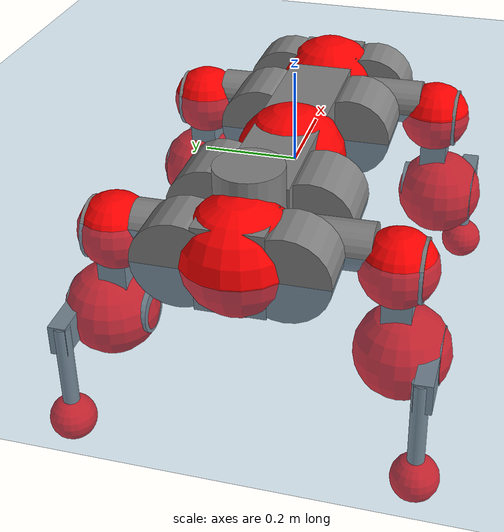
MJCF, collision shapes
<mujoco model="anymal_c">
  <compiler angle="radian" assetdir="assets" balanceinertia="true" inertiafromgeom="false"/>

  <option timestep="0.005" density="1.2" viscosity="2e-05"/>

  <size nkey="1"/>

  <visual>
    <quality shadowsize="8192"/>
    <map shadowclip="0.5"/>
  </visual>

  <default>
    <default class="/">
      <material specular="0" shininess="0.25"/>
      <geom contype="0" conaffinity="0" group="1" solref="-1000 -80"/>
      <site size="0.01 0.005 0.005" group="5"/>
      <general forcelimited="true" forcerange="-80 80" biastype="affine" gainprm="80" biasprm="0 -80 -2"/>
      <default class="anymal_c">
        <joint armature="0.01" damping="0.01" frictionloss="0.1"/>
        <default class="visual">
          <geom type="mesh" group="2"/>
          <default class="visual_zflip"/>
        </default>
        <default class="collision">
          <geom type="cylinder" group="3"/>
          <default class="foot">
            <geom size="0.03 0 0" type="sphere" condim="6" priority="1" friction="0.8 0.02 0.01" solimp="0.015 1 0.03"/>
          </default>
        </default>
      </default>
      <default class="reward_collision_sphere">
        <geom group="5" rgba="1 0 0 1"/>
      </default>
    </default>
  </default>

  <asset>
    <texture type="skybox" colorspace="auto" name="//unnamed_texture_0" builtin="gradient" rgb1="0.95 0.95 0.95" rgb2="0.95 0.95 0.95" width="100" height="600"/>
    <texture type="2d" colorspace="auto" name="texplane" builtin="checker" rgb1="0.345 0.575 0.748" rgb2="0.345 0.575 0.748" markrgb="1 1 1" width="512" height="512"/>
    <texture type="2d" colorspace="linear" name="base" file="base.png"/>
    <texture type="2d" colorspace="linear" name="top_shell" file="top_shell.png"/>
    <texture type="2d" colorspace="linear" name="bottom_shell" file="bottom_shell.png"/>
    <texture type="2d" colorspace="linear" name="remote" file="remote.png"/>
    <texture type="2d" colorspace="linear" name="hatch" file="hatch.png"/>
    <texture type="2d" colorspace="linear" name="handle" file="handle.png"/>
    <texture type="2d" colorspace="linear" name="face" file="face.png"/>
    <texture type="2d" colorspace="linear" name="battery" file="battery.png"/>
    <texture type="2d" colorspace="linear" name="lidar_cage" file="lidar_cage.png"/>
    <texture type="2d" colorspace="linear" name="depth_camera" file="depth_camera.png"/>
    <texture type="2d" colorspace="linear" name="wide_angle_camera" file="wide_angle_camera.png"/>
    <texture type="2d" colorspace="linear" name="lidar" file="lidar.png"/>
    <texture type="2d" colorspace="linear" name="drive" file="drive.png"/>
    <texture type="2d" colorspace="linear" name="hip_l" file="hip_l.png"/>
    <texture type="2d" colorspace="linear" name="shank_l" file="shank_l.png"/>
    <texture type="2d" colorspace="linear" name="foot" file="foot.png"/>
    <texture type="2d" colorspace="linear" name="thigh" file="thigh.png"/>
    <texture type="2d" colorspace="linear" name="shank_r" file="shank_r.png"/>
    <texture type="2d" colorspace="linear" name="hip_r" file="hip_r.png"/>
    <material name="MatPlane" class="/" texture="texplane" texuniform="true" texrepeat="2 2" specular="0.9" shininess="0.5"/>
    <material name="black_plastic" class="/" rgba="0.007 0.007 0.007 1"/>
    <material name="green" class="/" rgba="0.052 0.178 0.033 1"/>
    <material name="red" class="/" rgba="0.178 0.006 0.005 1"/>
    <material name="yellow" class="/" rgba="0.178 0.119 0.006 1"/>
    <material name="lwl" class="/" rgba="0.8 0.8 0.8 1"/>
    <material name="base" class="/" texture="base"/>
    <material name="top_shell" class="/" texture="top_shell"/>
    <material name="bottom_shell" class="/" texture="bottom_shell"/>
    <material name="hip_l" class="/" texture="hip_l"/>
    <material name="thigh" class="/" texture="thigh"/>
    <material name="shank_l" class="/" texture="shank_l"/>
    <material name="foot" class="/" texture="foot"/>
    <material name="hip_r" class="/" texture="hip_r"/>
    <material name="shank" class="/" texture="shank_r"/>
    <material name="hatch" class="/" texture="hatch"/>
    <material name="remote" class="/" texture="remote"/>
    <material name="handle" class="/" texture="handle"/>
    <material name="face" class="/" texture="face"/>
    <material name="depth_camera" class="/" texture="depth_camera"/>
    <material name="wide_angle_camera" class="/" texture="wide_angle_camera"/>
    <material name="battery" class="/" texture="battery"/>
    <material name="lidar_cage" class="/" texture="lidar_cage"/>
    <material name="lidar" class="/" texture="lidar"/>
    <material name="drive" class="/" texture="drive"/>
    <mesh name="base_0" class="/" file="base_0.obj"/>
    <mesh name="base_1" class="/" file="base_1.obj"/>
    <mesh name="base_2" class="/" file="base_2.obj"/>
    <mesh name="base_3" class="/" file="base_3.obj"/>
    <mesh name="base_4" class="/" file="base_4.obj"/>
    <mesh name="base_5" class="/" file="base_5.obj"/>
    <mesh name="top_shell" class="/" file="top_shell.obj"/>
    <mesh name="bottom_shell" class="/" file="bottom_shell.obj"/>
    <mesh name="remote" class="/" file="remote.obj"/>
    <mesh name="handle" class="/" file="handle.obj"/>
    <mesh name="face" class="/" file="face.obj"/>
    <mesh name="wide_angle_camera" class="/" file="wide_angle_camera.obj"/>
    <mesh name="depth_camera" class="/" file="depth_camera.obj"/>
    <mesh name="battery" class="/" file="battery.obj"/>
    <mesh name="lidar_cage" class="/" file="lidar_cage.obj"/>
    <mesh name="lidar" class="/" file="lidar.obj"/>
    <mesh name="drive" class="/" file="drive.obj"/>
    <mesh name="hip_l" class="/" file="hip_l.obj"/>
    <mesh name="thigh" class="/" file="thigh.obj"/>
    <mesh name="shank_l" class="/" file="shank_l.obj"/>
    <mesh name="foot" class="/" file="foot.obj"/>
    <mesh name="hip_r" class="/" file="hip_r.obj"/>
    <mesh name="hatch" class="/" file="hatch.obj"/>
    <mesh name="shank_r" class="/" file="shank_r.obj"/>
  </asset>

  <worldbody>
    <geom name="floor" class="/" size="100 100 0.125" type="plane" group="0" material="MatPlane"/>
    <light name="toplight_shadow" class="/" pos="0 0 5" dir="0.0990148 0.0990148 -0.990148" type="directional" ambient="0.04 0.04 0.04" diffuse="0.55 0.55 0.55" specular="0.12 0.12 0.12"/>
    <light name="toplight_fill" class="/" pos="0 0 5" dir="0.0990148 0.0990148 -0.990148" type="directional" castshadow="false" ambient="0.04 0.04 0.04" diffuse="0.3 0.3 0.3" specular="0.08 0.08 0.08"/>
    <body name="trunk" childclass="anymal_c" pos="-0.00138108 0.00767565 0.00322703" quat="0.999993 -0.00174372 -0.00168966 0.00301146">
      <inertial pos="0.00847442 0.0126023 0.024006" quat="0.47439 0.514813 0.499357 0.510454" mass="20.0731" diaginertia="0.433877 4.90408 0.028011"/>
      <joint name="//unnamed_joint_0" type="free" armature="0" damping="0" frictionloss="0"/>
      <geom name="//unnamed_geom_1" class="visual" material="green" mesh="base_0"/>
      <geom name="//unnamed_geom_2" class="visual" material="yellow" mesh="base_1"/>
      <geom name="//unnamed_geom_3" class="visual" material="red" mesh="base_2"/>
      <geom name="//unnamed_geom_4" class="visual" material="black_plastic" mesh="base_3"/>
      <geom name="//unnamed_geom_5" class="visual" material="lwl" mesh="base_4"/>
      <geom name="//unnamed_geom_6" class="visual" material="base" mesh="base_5"/>
      <geom name="trunk_1" class="collision" size="0.29188 0.0704539 0.0905836" type="box"/>
      <geom name="trunk_2" class="collision" size="0.0905836 0.0729701" pos="0.189946 0.103902 0" quat="0.707107 0 0.707107 0"/>
      <geom name="trunk_3" class="collision" size="0.0905836 0.0729701" pos="-0.189946 0.103902 0" quat="0.707107 0 0.707107 0"/>
      <geom name="trunk_4" class="collision" size="0.0905836 0.0729701" pos="0.189946 -0.103902 0" quat="0.707107 0 0.707107 0"/>
      <geom name="trunk_5" class="collision" size="0.0905836 0.0729701" pos="-0.189946 -0.103902 0" quat="0.707107 0 0.707107 0"/>
      <geom name="//unnamed_geom_12" class="visual" material="top_shell" mesh="top_shell"/>
      <geom name="//unnamed_geom_13" class="visual" material="bottom_shell" mesh="bottom_shell"/>
      <geom name="//unnamed_geom_14" class="visual" material="remote" mesh="remote"/>
      <geom name="//unnamed_geom_15" class="visual" material="handle" mesh="handle"/>
      <geom name="//unnamed_geom_16" class="visual" pos="0.361988 0 0" quat="1 0 0 0" material="face" mesh="face"/>
      <geom name="trunk_6" class="collision" size="0.0553566 0.0704539 0.0905836" pos="0.41002 0 0" type="box"/>
      <geom name="//unnamed_geom_18" class="collision" size="0.0905836 0.0553566" pos="0.41002 0.103902 0" quat="0.707107 0 0.707107 0"/>
      <geom name="//unnamed_geom_19" class="collision" size="0.0905836 0.0553566" pos="0.41002 -0.103902 0" quat="0.707107 0 0.707107 0"/>
      <geom name="//unnamed_geom_20" class="visual" pos="0.403156 0 -0.0177182" quat="0.965926 0 0.258819 0" material="depth_camera" mesh="depth_camera"/>
      <geom name="//unnamed_geom_21" class="visual" pos="0.448009 0 0.00990762" material="wide_angle_camera" mesh="wide_angle_camera"/>
      <geom name="//unnamed_geom_22" class="visual_zflip" pos="-0.361988 0 0" quat="0 0 0 1" material="face" mesh="face"/>
      <geom name="trunk_7" class="collision" size="0.0553566 0.0704539 0.0905836" pos="-0.41002 0 0" quat="0 0 0 1" type="box"/>
      <geom name="//unnamed_geom_24" class="collision" size="0.0905836 0.0553566" pos="-0.41002 -0.103902 0" quat="0 -0.707107 0 0.707107"/>
      <geom name="//unnamed_geom_25" class="collision" size="0.0905836 0.0553566" pos="-0.41002 0.103902 0" quat="0 -0.707107 0 0.707107"/>
      <geom name="//unnamed_geom_26" class="visual" pos="-0.403156 0 -0.0177182" quat="0 -0.258819 0 0.965926" material="depth_camera" mesh="depth_camera"/>
      <geom name="//unnamed_geom_27" class="visual_zflip" pos="-0.448009 0 0.00990762" quat="0 0 0 1" material="wide_angle_camera" mesh="wide_angle_camera"/>
      <geom name="//unnamed_geom_28" class="visual" material="battery" mesh="battery"/>
      <geom name="//unnamed_geom_29" class="visual" pos="0 0.121499 0.0208335" quat="0.683013 -0.183013 0.183013 0.683013" material="depth_camera" mesh="depth_camera"/>
      <geom name="//unnamed_geom_30" class="visual" pos="0 -0.121499 0.0208335" quat="0.683013 0.183013 0.183013 -0.683013" material="depth_camera" mesh="depth_camera"/>
      <geom name="//unnamed_geom_31" class="visual" pos="-0.317886 0 0.0486446" quat="1 0 0 0" material="lidar_cage" mesh="lidar_cage"/>
      <geom name="trunk_8" class="collision" size="0.0704539 0.0603891" pos="-0.317886 0 0.0883545"/>
      <geom name="//unnamed_geom_33" class="visual" pos="-0.317886 0.000240044 0.0941124" quat="0.707107 0 0 -0.707107" material="lidar" mesh="lidar"/>
      <geom name="//unnamed_geom_34" class="visual" pos="0.261906 0.154076 1.41878e-08" quat="0.258819 0.965926 0 0" material="drive" mesh="drive"/>
      <geom name="//unnamed_geom_35" class="visual" pos="0.261906 -0.154076 -1.41878e-08" quat="0.258819 -0.965926 0 0" material="drive" mesh="drive"/>
      <geom name="//unnamed_geom_36" class="visual" pos="-0.261906 0.154076 -1.41878e-08" quat="0 0 0.965926 -0.258819" material="drive" mesh="drive"/>
      <geom name="//unnamed_geom_37" class="visual" pos="-0.261906 -0.154076 1.41878e-08" quat="0 0 -0.965926 -0.258819" material="drive" mesh="drive"/>
      <geom name="//unnamed_geom_38" class="visual" pos="0.101304 0 0.0483137" quat="1 0 0 0" material="hatch" mesh="hatch"/>
      <geom name="//unnamed_geom_39" class="reward_collision_sphere" size="0.120778"/>
      <geom name="//unnamed_geom_40" class="reward_collision_sphere" size="0.120778" pos="0.392991 0 0"/>
      <geom name="//unnamed_geom_41" class="reward_collision_sphere" size="0.120778" pos="-0.392991 0 0"/>
      <site name="imu" pos="0.217613 0.0156724 0.0339832" size="0.0100648"/>
      <camera name="track" pos="0 -2.96862 0" quat="0.707107 0.707107 0 0" mode="trackcom"/>
      <camera name="ego_camera" pos="0.392991 0 -0.0264733" quat="-0.5 -0.5 0.5 0.5"/>
      <body name="LF_HIP" pos="0.262167 0.155494 -0.000818037" quat="0.259295 0.965798 0.000132128 -0.000209283">
        <inertial pos="0.0491848 -0.0128351 -0.00415525" quat="-0.14675 0.726876 -0.0717906 0.667055" mass="2.81487" diaginertia="0.00289092 0.0369051 0.000404437"/>
        <joint name="LF_HAA" pos="0 0 0" axis="0.999835 0.0176727 -0.00415432" range="-0.600506 0.512092" armature="0.0103022" damping="0.0159292" frictionloss="0.0931815"/>
        <geom name="//unnamed_geom_42" class="visual" pos="0 0.000834606 -0.000137083" quat="0.258819 -0.965926 0 0" material="hip_l" mesh="hip_l"/>
        <geom name="//unnamed_geom_43" class="visual" pos="0.0523114 -0.0711389 -0.0349886" quat="0.183013 -0.683013 0.683013 0.183013" material="drive" mesh="drive"/>
        <geom name="//unnamed_geom_44" class="collision" size="0.0503242 0.0704539" pos="0.0523114 -0.017752 -0.00456995" quat="-0.353553 -0.612372 0.612372 -0.353553"/>
        <body name="LF_THIGH" pos="0.0426346 -0.113756 -0.0304419" quat="0.183067 -0.678553 0.687674 0.182088">
          <inertial pos="0.0257277 -0.0130037 -0.161396" quat="0.991549 -0.000172293 -0.0760497 0.1051" mass="2.94875" diaginertia="0.0177415 0.185019 0.000541211"/>
          <joint name="LF_HFE" pos="0 0 0" axis="0.999197 -0.0221845 -0.0333665" range="-2.98241 3.37223" armature="0.00361807" damping="0.0068117" frictionloss="0.132465"/>
          <geom name="//unnamed_geom_45" class="visual" pos="-0.0121564 -1.91557e-05 0" quat="0.707107 0 0 -0.707107" material="thigh" mesh="thigh"/>
          <geom name="//unnamed_geom_46" class="collision" size="0.0654215 0.0402594" pos="0.0349325 0 0" quat="0.5 0.5 -0.5 -0.5"/>
          <geom name="//unnamed_geom_47" class="collision" size="0.0377432 0.0301945 0.14223" pos="0.0261994 0 -0.093526" quat="0.707107 0 0 -0.707107" type="box"/>
          <geom name="//unnamed_geom_48" class="visual" pos="0.0875933 0 -0.188622" quat="1 0 0 0" material="drive" mesh="drive"/>
          <geom name="//unnamed_geom_49" class="collision" size="0.0503242 0.0704539" pos="0.0264614 0 -0.188622" quat="0.707107 0 0.707107 0"/>
          <geom name="//unnamed_geom_50" class="reward_collision_sphere" size="0.0805188" pos="0.0218328 0 0"/>
          <body name="LF_SHANK" pos="0.085815 -0.00196633 -0.191418" quat="1 -0.000256087 -0.000125247 8.59473e-05">
            <inertial pos="0.0155961 -0.0837437 -0.0438938" quat="0.993688 -0.104414 -0.000272324 -0.0410004" mass="0.624004" diaginertia="0.00567073 0.0620611 0.000155035"/>
            <joint name="LF_KFE" pos="0 0 0" axis="0.999984 -0.00286486 0.00492958" range="-3.40301 2.95303" armature="0.0135036" damping="0.0598002" frictionloss="0.0831689"/>
            <geom name="//unnamed_geom_51" class="visual" pos="-0.00396394 -0.021136 0" quat="0.707107 0 0 -0.707107" material="shank_l" mesh="shank_l"/>
            <geom name="LF_kfe_act" class="collision" size="0.0603891 0.0201297" pos="0.0174663 0 0" quat="0.5 0.5 -0.5 -0.5"/>
            <geom name="//unnamed_geom_53" class="collision" size="0.0578718 0.0339688 0.0191232" pos="0.0174663 -0.0853463 0" quat="0.5 0.5 -0.5 -0.5" type="box"/>
            <geom name="//unnamed_geom_54" class="visual" pos="0.0113977 -0.137356 -0.223679" quat="0.382683 0 0 -0.92388" material="foot" mesh="foot"/>
            <geom name="LF_calf" class="collision" size="0.0176135 0.142168" pos="0.0113967 -0.130545 -0.11184" quat="0.707107 0 0 -0.707107"/>
            <geom name="LF_foot" class="foot" size="0.0352305" pos="0.0113967 -0.130545 -0.208788" quat="0.707107 0 0 -0.707107"/>
            <geom name="//unnamed_geom_57" class="reward_collision_sphere" size="0.100648" pos="-0.0436656 0 0"/>
            <geom name="//unnamed_geom_58" class="reward_collision_sphere" size="0.0503242" pos="0.0113967 -0.130545 -0.208788"/>
            <site name="LF_foot" class="foot" pos="0.0113967 -0.130545 -0.208788" quat="0.707107 0 0 -0.707107" size="0.0100648"/>
          </body>
        </body>
      </body>
      <body name="RF_HIP" pos="0.274841 -0.149195 0.0118459" quat="0.258224 -0.966085 0.000285284 -0.000652451">
        <inertial pos="0.0503186 0.0184282 -0.000615574" quat="0.0801409 0.682871 0.123598 0.715534" mass="3.03099" diaginertia="0.00333417 0.0354429 0.000404712"/>
        <joint name="RF_HAA" pos="0 0 0" axis="0.999499 -0.0302895 -0.00914447" stiffness="0.0666022" range="-0.491375 0.513762" armature="0.0123059" damping="0.0218049" frictionloss="0.0862907"/>
        <geom name="//unnamed_geom_59" class="visual" pos="0 -0.000834599 -0.000137083" quat="0.258819 0.965926 0 0" material="hip_r" mesh="hip_r"/>
        <geom name="//unnamed_geom_60" class="visual" pos="0.0523115 0.0711389 -0.0349886" quat="0.183013 0.683013 0.683013 -0.183013" material="drive" mesh="drive"/>
        <geom name="//unnamed_geom_61" class="collision" size="0.0503242 0.0704539" pos="0.0523114 0.017752 -0.00456995" quat="-0.353553 0.612372 0.612372 0.353553"/>
        <body name="RF_THIGH" pos="0.0568281 0.105633 -0.0170267" quat="0.183215 0.683034 0.682905 -0.183133">
          <inertial pos="0.0212694 0.00740049 -0.174147" quat="0.994116 -0.0186341 -0.0695126 0.0809584" mass="2.97761" diaginertia="0.0166329 0.213111 0.000526009"/>
          <joint name="RF_HFE" pos="0 0 0" axis="1 0.000469184 1.48302e-05" range="-3.16317 3.06508" armature="0.0150668" damping="0" frictionloss="0.136248"/>
          <geom name="//unnamed_geom_62" class="visual" pos="-0.0121564 -1.91557e-05 0" quat="0.707107 0 0 -0.707107" material="thigh" mesh="thigh"/>
          <geom name="//unnamed_geom_63" class="collision" size="0.0654215 0.0402594" pos="0.0349325 0 0" quat="0.5 0.5 0.5 0.5"/>
          <geom name="//unnamed_geom_64" class="collision" size="0.0377432 0.0301945 0.14223" pos="0.0261994 0 -0.093526" quat="0.707107 0 0 0.707107" type="box"/>
          <geom name="//unnamed_geom_65" class="visual" pos="0.0875933 0 -0.188622" quat="1 0 0 0" material="drive" mesh="drive"/>
          <geom name="//unnamed_geom_66" class="collision" size="0.0503242 0.0704539" pos="0.0264614 0 -0.188622" quat="0.707107 0 0.707107 0"/>
          <geom name="//unnamed_geom_67" class="reward_collision_sphere" size="0.0805188" pos="0.0218328 0 0"/>
          <body name="RF_SHANK" pos="0.0892661 -0.00553584 -0.199536" quat="1 -0.000577536 -0.000404629 -0.000651527">
            <inertial pos="0.0118874 0.0834118 -0.0529189" quat="0.991153 0.124059 -0.0030557 0.0470819" mass="0.500426" diaginertia="0.00455748 0.0500888 0.00012936"/>
            <joint name="RF_KFE" pos="0 0 0" axis="1 0.000135249 -0.000271601" stiffness="0.000902596" range="-3.21094 3.08667" armature="0.0104618" damping="0.068972" frictionloss="0.120694"/>
            <geom name="//unnamed_geom_68" class="visual" pos="-0.00396392 0.0211359 0" quat="0.707107 0 0 0.707107" material="shank" mesh="shank_r"/>
            <geom name="RF_kfe_act" class="collision" size="0.0603891 0.0201297" pos="0.0174663 0 0" quat="0.5 0.5 0.5 0.5"/>
            <geom name="//unnamed_geom_70" class="collision" size="0.0578718 0.0339688 0.0191232" pos="0.0174663 0.0853463 0" quat="0.5 0.5 0.5 0.5" type="box"/>
            <geom name="//unnamed_geom_71" class="visual" pos="0.0113958 0.137356 -0.223679" quat="0.382683 0 0 0.92388" material="foot" mesh="foot"/>
            <geom name="RF_calf" class="collision" size="0.0176135 0.142168" pos="0.0113967 0.130545 -0.11184" quat="0.707107 0 0 0.707107"/>
            <geom name="RF_foot" class="foot" size="0.0447423" pos="0.0113967 0.130545 -0.208788" quat="0.707107 0 0 0.707107"/>
            <geom name="//unnamed_geom_74" class="reward_collision_sphere" size="0.100648" pos="-0.0436656 0 0"/>
            <geom name="//unnamed_geom_75" class="reward_collision_sphere" size="0.0503242" pos="0.0113967 0.130545 -0.208788"/>
            <site name="RF_foot" class="foot" pos="0.0113967 0.130545 -0.208788" quat="0.707107 0 0 0.707107" size="0.0100648"/>
          </body>
        </body>
      </body>
      <body name="LH_HIP" pos="-0.259592 0.148802 -0.00881132" quat="-0.000326987 -0.000432687 0.965903 -0.258905">
        <inertial pos="0.047997 0.0245417 -0.0124525" quat="0.136523 0.681451 0.117719 0.709316" mass="3.4831" diaginertia="0.00319741 0.0399608 0.000404775"/>
        <joint name="LH_HAA" pos="0 0 0" axis="0.999737 -0.0145903 0.0177061" range="-0.69329 0.79596" armature="0.0109853" damping="0.00210679" frictionloss="0.0553389"/>
        <geom name="//unnamed_geom_76" class="visual" pos="0 -0.000834599 -0.000137083" quat="-0.258819 -0.965926 0 0" material="hip_r" mesh="hip_r"/>
        <geom name="//unnamed_geom_77" class="visual" pos="0.0523115 0.0711389 -0.0349886" quat="0.183013 0.683013 0.683013 -0.183013" material="drive" mesh="drive"/>
        <geom name="//unnamed_geom_78" class="collision" size="0.0503242 0.0704539" pos="0.0523114 0.017752 -0.00456995" quat="-0.353553 0.612372 0.612372 0.353553"/>
        <body name="LH_THIGH" pos="0.0500015 0.113355 -0.0300545" quat="0.185067 0.678862 0.686119 -0.184762">
          <inertial pos="0.0280177 -0.013752 -0.166261" quat="0.99679 -0.0181688 -0.0565644 0.0536599" mass="3.59427" diaginertia="0.0164345 0.196534 0.000456168"/>
          <joint name="LH_HFE" pos="0 0 0" axis="0.997888 -0.0603017 -0.0241677" range="-3.133 3.11883" armature="0.0062077" damping="0" frictionloss="0.13264"/>
          <geom name="//unnamed_geom_79" class="visual" pos="-0.0121564 -1.91557e-05 0" quat="0.707107 0 0 -0.707107" material="thigh" mesh="thigh"/>
          <geom name="//unnamed_geom_80" class="collision" size="0.0654215 0.0402594" pos="0.0349325 0 0" quat="0.5 0.5 -0.5 -0.5"/>
          <geom name="//unnamed_geom_81" class="collision" size="0.0377432 0.0301945 0.14223" pos="0.0261994 0 -0.093526" quat="0.707107 0 0 -0.707107" type="box"/>
          <geom name="//unnamed_geom_82" class="visual" pos="0.0875933 0 -0.188622" quat="1 0 0 0" material="drive" mesh="drive"/>
          <geom name="//unnamed_geom_83" class="collision" size="0.0503242 0.0704539" pos="0.0264614 0 -0.188622" quat="0.707107 0 0.707107 0"/>
          <geom name="//unnamed_geom_84" class="reward_collision_sphere" size="0.0805188" pos="0.0218328 0 0"/>
          <body name="LH_SHANK" pos="0.0925052 -1.30256e-05 -0.19689" quat="0.999995 -0.0018894 -0.00177165 0.00160155">
            <inertial pos="0.00604538 0.0810744 -0.0536542" quat="0.992732 0.117629 0.000821773 0.0254218" mass="0.615119" diaginertia="0.00562016 0.0726516 0.000156192"/>
            <joint name="LH_KFE" pos="0 0 0" axis="0.999907 0.0135244 -0.00186693" range="-3.39399 3.16473" armature="0.00345734" damping="0" frictionloss="0.1376"/>
            <geom name="//unnamed_geom_85" class="visual" pos="-0.00396392 0.0211359 0" quat="-0.707107 0 0 -0.707107" material="shank" mesh="shank_r"/>
            <geom name="LH_kfe_act" class="collision" size="0.0603891 0.0201297" pos="0.0174663 0 0" quat="0.5 0.5 -0.5 -0.5"/>
            <geom name="//unnamed_geom_87" class="collision" size="0.0578718 0.0339688 0.0191232" pos="0.0174663 0.0853463 0" quat="0.5 0.5 -0.5 -0.5" type="box"/>
            <geom name="//unnamed_geom_88" class="visual" pos="0.0113958 0.137356 -0.223679" quat="-0.382683 0 0 -0.92388" material="foot" mesh="foot"/>
            <geom name="LH_calf" class="collision" size="0.0176135 0.142168" pos="0.0113967 0.130545 -0.11184" quat="0.707107 0 0 -0.707107"/>
            <geom name="LH_foot" class="foot" size="0.0338517" pos="0.0113967 0.130545 -0.208788" quat="0.707107 0 0 -0.707107"/>
            <geom name="//unnamed_geom_91" class="reward_collision_sphere" size="0.100648" pos="-0.0436656 0 0"/>
            <geom name="//unnamed_geom_92" class="reward_collision_sphere" size="0.0503242" pos="0.0113967 0.130545 -0.208788"/>
            <site name="LH_foot" class="foot" pos="0.0113967 0.130545 -0.208788" quat="0.707107 0 0 -0.707107" size="0.0100648"/>
          </body>
        </body>
      </body>
      <body name="RH_HIP" pos="-0.249248 -0.155124 -0.00284717" quat="0.00399089 -0.00202235 -0.967226 -0.253878">
        <inertial pos="0.0500919 -0.019531 -0.00505722" quat="-0.131135 0.710061 -0.14142 0.677214" mass="3.01073" diaginertia="0.00318186 0.0364201 0.000370384"/>
        <joint name="RH_HAA" pos="0 0 0" axis="0.999997 -0.000636626 -0.00230227" range="-0.687625 0.333439" armature="0.00437978" damping="0.0264633" frictionloss="0.0655101"/>
        <geom name="//unnamed_geom_93" class="visual" pos="0 0.000834606 -0.000137083" quat="-0.258819 0.965926 0 0" material="hip_l" mesh="hip_l"/>
        <geom name="//unnamed_geom_94" class="visual" pos="0.0523114 -0.0711389 -0.0349886" quat="-0.183013 0.683013 -0.683013 -0.183013" material="drive" mesh="drive"/>
        <geom name="//unnamed_geom_95" class="collision" size="0.0503242 0.0704539" pos="0.0523114 -0.017752 -0.00456995" quat="0.353553 0.612372 -0.612372 0.353553"/>
        <body name="RH_THIGH" pos="0.0602693 -0.116907 -0.0241531" quat="-0.181046 0.682566 -0.683893 -0.183349">
          <inertial pos="0.0285652 0.0088334 -0.162792" quat="0.993573 -0.00559264 -0.0762801 0.0834433" mass="2.93137" diaginertia="0.0150053 0.217564 0.000566107"/>
          <joint name="RH_HFE" pos="0 0 0" axis="0.999979 -0.00618944 0.00184992" range="-3.1233 2.87483" armature="0.0163506" damping="0" frictionloss="0.0985778"/>
          <geom name="//unnamed_geom_96" class="visual" pos="-0.0121564 -1.91557e-05 0" quat="0.707107 0 0 -0.707107" material="thigh" mesh="thigh"/>
          <geom name="//unnamed_geom_97" class="collision" size="0.0654215 0.0402594" pos="0.0349325 0 0" quat="0.5 0.5 0.5 0.5"/>
          <geom name="//unnamed_geom_98" class="collision" size="0.0377432 0.0301945 0.14223" pos="0.0261994 0 -0.093526" quat="0.707107 0 0 0.707107" type="box"/>
          <geom name="//unnamed_geom_99" class="visual" pos="0.0875933 0 -0.188622" quat="1 0 0 0" material="drive" mesh="drive"/>
          <geom name="//unnamed_geom_100" class="collision" size="0.0503242 0.0704539" pos="0.0264614 0 -0.188622" quat="0.707107 0 0.707107 0"/>
          <geom name="//unnamed_geom_101" class="reward_collision_sphere" size="0.0805188" pos="0.0218328 0 0"/>
          <body name="RH_SHANK" pos="0.0810445 -3.26619e-06 -0.193586" quat="1 -5.89021e-05 1.89012e-05 -1.13038e-05">
            <inertial pos="0.0112837 -0.091477 -0.0555205" quat="0.992704 -0.117756 0.00240556 -0.0258045" mass="0.548565" diaginertia="0.00503138 0.0626742 0.000143706"/>
            <joint name="RH_KFE" pos="0 0 0" axis="0.998996 0.0230764 0.0383964" range="-3.35544 3.03042" armature="0.0108028" damping="0.00305571" frictionloss="0.0692669"/>
            <geom name="//unnamed_geom_102" class="visual" pos="-0.00396394 -0.021136 0" quat="0.707107 0 0 -0.707107" material="shank_l" mesh="shank_l"/>
            <geom name="RH_kfe_act" class="collision" size="0.0603891 0.0201297" pos="0.0174663 0 0" quat="0.5 0.5 0.5 0.5"/>
            <geom name="//unnamed_geom_104" class="collision" size="0.0578718 0.0339688 0.0191232" pos="0.0174663 -0.0853463 0" quat="0.5 0.5 0.5 0.5" type="box"/>
            <geom name="//unnamed_geom_105" class="visual" pos="0.0113977 -0.137356 -0.223679" quat="0.382683 0 0 -0.92388" material="foot" mesh="foot"/>
            <geom name="RH_calf" class="collision" size="0.0176135 0.142168" pos="0.0113967 -0.130545 -0.11184" quat="0.707107 0 0 0.707107"/>
            <geom name="RH_foot" class="foot" size="0.0150446" pos="0.0113967 -0.130545 -0.208788" quat="0.707107 0 0 0.707107"/>
            <geom name="//unnamed_geom_108" class="reward_collision_sphere" size="0.100648" pos="-0.0436656 0 0"/>
            <geom name="//unnamed_geom_109" class="reward_collision_sphere" size="0.0503242" pos="0.0113967 -0.130545 -0.208788"/>
            <site name="RH_foot" class="foot" pos="0.0113967 -0.130545 -0.208788" quat="0.707107 0 0 0.707107" size="0.0100648"/>
          </body>
        </body>
      </body>
    </body>
  </worldbody>

  <contact>
    <pair class="/" geom1="floor" geom2="LF_foot" name="//unnamed_contact_0"/>
    <pair class="/" geom1="floor" geom2="RF_foot" name="//unnamed_contact_1"/>
    <pair class="/" geom1="floor" geom2="LH_foot" name="//unnamed_contact_2"/>
    <pair class="/" geom1="floor" geom2="RH_foot" name="//unnamed_contact_3"/>
  </contact>

  <actuator>
    <general name="LF_HAA" class="/" joint="LF_HAA" forcerange="-64.8266 64.8266" gainprm="75.7599" biasprm="0 -75.7599 -2.06066"/>
    <general name="LF_HFE" class="/" joint="LF_HFE" forcerange="-83.5642 83.5642" gainprm="75.7599" biasprm="0 -75.7599 -2.06066"/>
    <general name="LF_KFE" class="/" joint="LF_KFE" forcerange="-83.533 83.533" gainprm="75.7599" biasprm="0 -75.7599 -2.06066"/>
    <general name="RF_HAA" class="/" joint="RF_HAA" forcerange="-97.9559 97.9559" gainprm="75.7599" biasprm="0 -75.7599 -2.06066"/>
    <general name="RF_HFE" class="/" joint="RF_HFE" forcerange="-80.4298 80.4298" gainprm="75.7599" biasprm="0 -75.7599 -2.06066"/>
    <general name="RF_KFE" class="/" joint="RF_KFE" forcerange="-106.274 106.274" gainprm="75.7599" biasprm="0 -75.7599 -2.06066"/>
    <general name="LH_HAA" class="/" joint="LH_HAA" forcerange="-91.0483 91.0483" gainprm="75.7599" biasprm="0 -75.7599 -2.06066"/>
    <general name="LH_HFE" class="/" joint="LH_HFE" forcerange="-79.6786 79.6786" gainprm="75.7599" biasprm="0 -75.7599 -2.06066"/>
    <general name="LH_KFE" class="/" joint="LH_KFE" forcerange="-72.5195 72.5195" gainprm="75.7599" biasprm="0 -75.7599 -2.06066"/>
    <general name="RH_HAA" class="/" joint="RH_HAA" forcerange="-96.9355 96.9355" gainprm="75.7599" biasprm="0 -75.7599 -2.06066"/>
    <general name="RH_HFE" class="/" joint="RH_HFE" forcerange="-68.2242 68.2242" gainprm="75.7599" biasprm="0 -75.7599 -2.06066"/>
    <general name="RH_KFE" class="/" joint="RH_KFE" forcerange="-47.1402 47.1402" gainprm="75.7599" biasprm="0 -75.7599 -2.06066"/>
  </actuator>

  <sensor>
    <gyro site="imu" name="imu_angular_velocity"/>
    <velocimeter site="imu" name="imu_linear_velocity"/>
    <framelinvel objtype="site" objname="LF_foot" name="LF_foot_global_linear_velocity"/>
    <framelinvel objtype="site" objname="RF_foot" name="RF_foot_global_linear_velocity"/>
    <framelinvel objtype="site" objname="LH_foot" name="LH_foot_global_linear_velocity"/>
    <framelinvel objtype="site" objname="RH_foot" name="RH_foot_global_linear_velocity"/>
  </sensor>

  <keyframe>
    <key name="home" qpos="0 0 0.55 1 0 0 0 0 0.4 -0.8 0 -0.4 0.8 0 -0.4 0.8 0 0.4 -0.8"/>
  </keyframe>
</mujoco>
